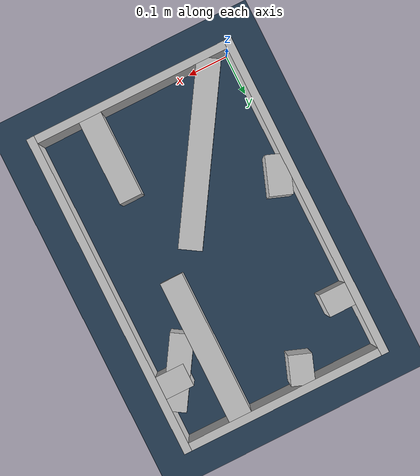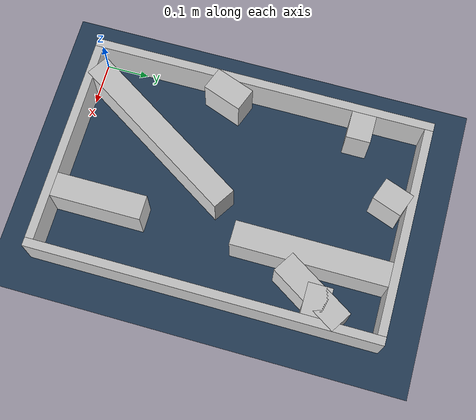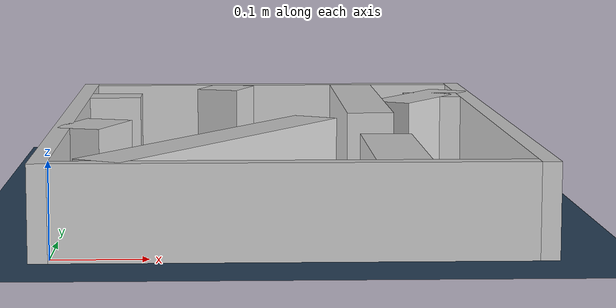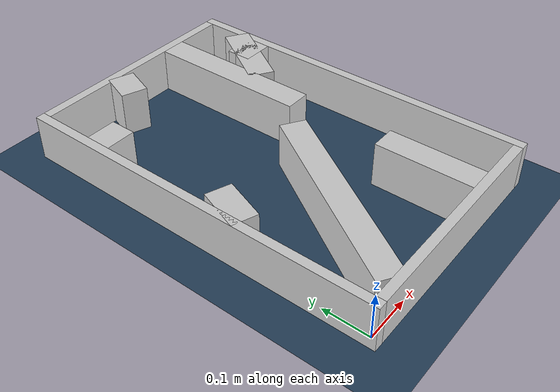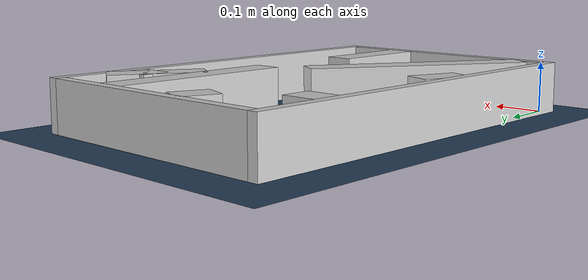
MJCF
<?xml version="1.0" ?>
<mujoco model="generated_real_template">
  <compiler angle="degree"/>
  <option timestep="0.002" integrator="implicitfast" iterations="100" cone="elliptic"/>
  <default>
    <geom density="1"/>
  </default>
  <asset>
    <texture builtin="gradient" height="3072" rgb1="0.3 0.5 0.7" rgb2="0 0 0" type="skybox" width="512"/>
    <texture builtin="checker" height="300" mark="edge" markrgb="0.8 0.8 0.8" name="groundplane" rgb1="0.2 0.3 0.4" rgb2="0.1 0.2 0.3" type="2d" width="300"/>
    <material name="groundplane" reflectance="0.2" texrepeat="5 5" texture="groundplane" texuniform="true"/>
  </asset>
  <worldbody>
    <light dir="0 0 -1" directional="true" pos="0 0 1.5"/>
    <geom name="floor" type="plane" condim="4" friction="0.5 0.005 0.001" material="groundplane" size="0 0 0.05"/>
    <body name="walls">
      <geom name="wall_boundary_left" type="box" condim="4" friction="1.0 0.005 0.0001" rgba="0.8 0.8 0.8 1" pos="-0.010000 0.387500 0.050000" euler="0 0 0.000000" size="0.010000 0.407500 0.050000"/>
      <geom name="wall_boundary_right" type="box" condim="4" friction="1.0 0.005 0.0001" rgba="0.8 0.8 0.8 1" pos="0.500000 0.387500 0.050000" euler="0 0 0.000000" size="0.010000 0.407500 0.050000"/>
      <geom name="wall_boundary_bottom" type="box" condim="4" friction="1.0 0.005 0.0001" rgba="0.8 0.8 0.8 1" pos="0.245000 -0.010000 0.050000" euler="0 0 0.000000" size="0.245000 0.010000 0.050000"/>
      <geom name="wall_boundary_top" type="box" condim="4" friction="1.0 0.005 0.0001" rgba="0.8 0.8 0.8 1" pos="0.245000 0.785000 0.050000" euler="0 0 0.000000" size="0.245000 0.010000 0.050000"/>
      <geom name="wall_inner_1_1" type="box" condim="4" friction="1.0 0.005 0.0001" rgba="0.8 0.8 0.8 1" pos="0.023460 0.314501 0.050000" euler="0 0 69.893963" size="0.048567 0.028500 0.050000"/>
      <geom name="wall_inner_1_2" type="box" condim="4" friction="1.0 0.005 0.0001" rgba="0.8 0.8 0.8 1" pos="0.179597 0.741028 0.050000" euler="0 0 69.893963" size="0.036177 0.028500 0.050000"/>
      <geom name="wall_inner_2_1" type="box" condim="4" friction="1.0 0.005 0.0001" rgba="0.8 0.8 0.8 1" pos="0.355145 0.105459 0.050000" euler="0 0 90.000000" size="0.105459 0.028500 0.050000"/>
      <geom name="wall_inner_2_2" type="box" condim="4" friction="1.0 0.005 0.0001" rgba="0.8 0.8 0.8 1" pos="0.355145 0.596010 0.050000" euler="0 0 90.000000" size="0.178990 0.028500 0.050000"/>
      <geom name="wall_inner_3_1" type="box" condim="4" friction="1.0 0.005 0.0001" rgba="0.8 0.8 0.8 1" pos="0.033193 0.633693 0.050000" euler="0 0 0.000000" size="0.033193 0.028500 0.050000"/>
      <geom name="wall_inner_3_2" type="box" condim="4" friction="1.0 0.005 0.0001" rgba="0.8 0.8 0.8 1" pos="0.454337 0.633693 0.050000" euler="0 0 0.000000" size="0.035663 0.028500 0.050000"/>
      <geom name="wall_inner_4_1" type="box" condim="4" friction="1.0 0.005 0.0001" rgba="0.8 0.8 0.8 1" pos="0.437521 0.618900 0.050000" euler="0 0 -122.238375" size="0.090679 0.028500 0.050000"/>
      <geom name="wall_inner_4_2" type="box" condim="4" friction="1.0 0.005 0.0001" rgba="0.8 0.8 0.8 1" pos="0.166514 0.189187 0.050000" euler="0 0 -122.238375" size="0.223669 0.028500 0.050000"/>
    </body>
  </worldbody>
</mujoco>
